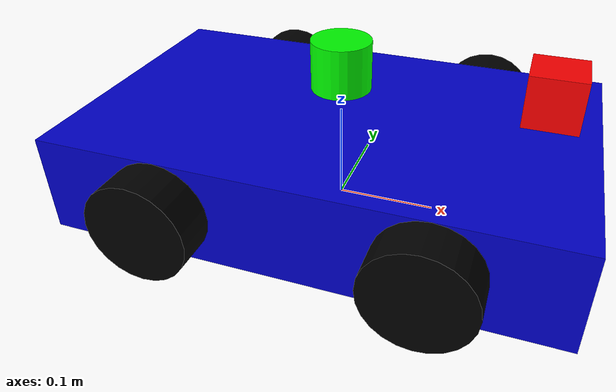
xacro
<?xml version="1.0"?>
<robot name="my_car_with_sensors" xmlns:xacro="http://www.ros.org/wiki/xacro">

  <!-- Include car model -->
  <xacro:include filename="$(find my_car_sim)/urdf/car.urdf.xacro" />

  <!-- Include sensors -->
  <xacro:include filename="$(find my_car_sim)/urdf/sensors.urdf.xacro" />

  <!-- Add camera -->
  <xacro:camera_sensor prefix="camera" parent="base_link" xyz="0.2 0 0.15" rpy="0 0 0" />

  <!-- Add LiDAR -->
  <xacro:lidar_sensor prefix="lidar" parent="base_link" xyz="0 0 0.15" rpy="0 0 0" />

</robot>

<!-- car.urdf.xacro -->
<robot name="my_car" xmlns:xacro="http://www.ros.org/wiki/xacro">

  <!-- Properties -->
  <xacro:property name="chassis_length" value="0.5"/>
  <xacro:property name="chassis_width" value="0.3"/>
  <xacro:property name="chassis_height" value="0.1"/>
  <xacro:property name="wheel_radius" value="0.05"/>
  <xacro:property name="wheel_width" value="0.04"/>
  <xacro:property name="wheel_mass" value="0.5"/>
  <xacro:property name="chassis_mass" value="5.0"/>

  <!-- Chassis -->
  <link name="base_link">
    <inertial>
      <mass value="${chassis_mass}"/>
      <origin xyz="0 0 ${chassis_height/2}" rpy="0 0 0"/>
      <inertia ixx="${chassis_mass/12 * (chassis_width*chassis_width + chassis_height*chassis_height)}"
               ixy="0" ixz="0"
               iyy="${chassis_mass/12 * (chassis_length*chassis_length + chassis_height*chassis_height)}"
               iyz="0"
               izz="${chassis_mass/12 * (chassis_length*chassis_length + chassis_width*chassis_width)}"/>
    </inertial>
    <collision>
      <origin xyz="0 0 ${chassis_height/2}" rpy="0 0 0"/>
      <geometry>
        <box size="${chassis_length} ${chassis_width} ${chassis_height}"/>
      </geometry>
    </collision>
    <visual>
      <origin xyz="0 0 ${chassis_height/2}" rpy="0 0 0"/>
      <geometry>
        <box size="${chassis_length} ${chassis_width} ${chassis_height}"/>
      </geometry>
      <material name="blue">
        <color rgba="0 0 0.8 1"/>
      </material>
    </visual>
  </link>

  <!-- Gazebo material -->
  <gazebo reference="base_link">
    <material>Gazebo/Blue</material>
  </gazebo>

  <!-- Wheel Macro -->
  <xacro:macro name="wheel" params="name x y z">
    <link name="${name}_wheel">
      <inertial>
        <mass value="${wheel_mass}"/>
        <origin xyz="0 0 0" rpy="${pi/2} 0 0"/>
        <inertia ixx="${wheel_mass * (3*wheel_radius*wheel_radius + wheel_width*wheel_width)/12}"
                 ixy="0" ixz="0"
                 iyy="${wheel_mass * (3*wheel_radius*wheel_radius + wheel_width*wheel_width)/12}"
                 iyz="0"
                 izz="${wheel_mass * wheel_radius*wheel_radius/2}"/>
      </inertial>
      <collision>
        <origin xyz="0 0 0" rpy="${pi/2} 0 0"/>
        <geometry>
          <cylinder radius="${wheel_radius}" length="${wheel_width}"/>
        </geometry>
      </collision>
      <visual>
        <origin xyz="0 0 0" rpy="${pi/2} 0 0"/>
        <geometry>
          <cylinder radius="${wheel_radius}" length="${wheel_width}"/>
        </geometry>
        <material name="black">
          <color rgba="0 0 0 1"/>
        </material>
      </visual>
    </link>

    <gazebo reference="${name}_wheel">
      <material>Gazebo/Black</material>
    </gazebo>

    <joint name="${name}_wheel_joint" type="continuous">
      <parent link="base_link"/>
      <child link="${name}_wheel"/>
      <origin xyz="${x} ${y} ${z}" rpy="0 0 0"/>
      <axis xyz="0 1 0"/>
      <dynamics damping="0.1" friction="0.1"/>
    </joint>
  </xacro:macro>

  <!-- Create wheels -->
  <xacro:wheel name="front_left" x="${chassis_length/4}" y="${chassis_width/2 + wheel_width/2}" z="${wheel_radius}"/>
  <xacro:wheel name="front_right" x="${chassis_length/4}" y="-${chassis_width/2 + wheel_width/2}" z="${wheel_radius}"/>
  <xacro:wheel name="rear_left" x="-${chassis_length/4}" y="${chassis_width/2 + wheel_width/2}" z="${wheel_radius}"/>
  <xacro:wheel name="rear_right" x="-${chassis_length/4}" y="-${chassis_width/2 + wheel_width/2}" z="${wheel_radius}"/>

  <!-- Add Gazebo plugin for SimulatedDifferentialDrive -->
  <gazebo>
    <plugin name="differential_drive_controller" filename="libgazebo_ros_diff_drive.so">
      <legacyMode>false</legacyMode>
      <alwaysOn>true</alwaysOn>
      <updateRate>20</updateRate>
      <leftJoint>front_left_wheel_joint</leftJoint>
      <rightJoint>front_right_wheel_joint</rightJoint>
      <wheelSeparation>${chassis_width + wheel_width}</wheelSeparation>
      <wheelDiameter>${2*wheel_radius}</wheelDiameter>
      <torque>50</torque>
      <commandTopic>cmd_vel</commandTopic>
      <odometryTopic>odom</odometryTopic>
      <odometryFrame>odom</odometryFrame>
      <robotBaseFrame>base_link</robotBaseFrame>
    </plugin>
  </gazebo>

</robot>

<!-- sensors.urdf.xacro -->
<robot xmlns:xacro="http://www.ros.org/wiki/xacro">

  <!-- Camera -->
  <xacro:macro name="camera_sensor" params="prefix parent xyz rpy">
    <joint name="${prefix}_joint" type="fixed">
      <parent link="${parent}"/>
      <child link="${prefix}_link"/>
      <origin xyz="${xyz}" rpy="${rpy}"/>
    </joint>

    <link name="${prefix}_link">
      <inertial>
        <mass value="0.1"/>
        <origin xyz="0 0 0" rpy="0 0 0"/>
        <inertia ixx="0.0001" ixy="0" ixz="0" iyy="0.0001" iyz="0" izz="0.0001"/>
      </inertial>
      <collision>
        <origin xyz="0 0 0" rpy="0 0 0"/>
        <geometry>
          <box size="0.05 0.05 0.05"/>
        </geometry>
      </collision>
      <visual>
        <origin xyz="0 0 0" rpy="0 0 0"/>
        <geometry>
          <box size="0.05 0.05 0.05"/>
        </geometry>
        <material name="red">
          <color rgba="1 0 0 1"/>
        </material>
      </visual>
    </link>

    <gazebo reference="${prefix}_link">
      <material>Gazebo/Red</material>
      <sensor type="camera" name="${prefix}">
        <update_rate>30.0</update_rate>
        <camera name="head">
          <horizontal_fov>1.3962634</horizontal_fov>
          <image>
            <width>800</width>
            <height>600</height>
            <format>R8G8B8</format>
          </image>
          <clip>
            <near>0.02</near>
            <far>300</far>
          </clip>
          <noise>
            <type>gaussian</type>
            <mean>0.0</mean>
            <stddev>0.007</stddev>
          </noise>
        </camera>
        <plugin name="camera_controller" filename="libgazebo_ros_camera.so">
          <alwaysOn>true</alwaysOn>
          <updateRate>0.0</updateRate>
          <cameraName>${prefix}</cameraName>
          <imageTopicName>image_raw</imageTopicName>
          <cameraInfoTopicName>camera_info</cameraInfoTopicName>
          <frameName>${prefix}_link</frameName>
          <hackBaseline>0.07</hackBaseline>
          <distortionK1>0.0</distortionK1>
          <distortionK2>0.0</distortionK2>
          <distortionK3>0.0</distortionK3>
          <distortionT1>0.0</distortionT1>
          <distortionT2>0.0</distortionT2>
        </plugin>
      </sensor>
    </gazebo>
  </xacro:macro>

  <!-- LiDAR -->
  <xacro:macro name="lidar_sensor" params="prefix parent xyz rpy">
    <joint name="${prefix}_joint" type="fixed">
      <parent link="${parent}"/>
      <child link="${prefix}_link"/>
      <origin xyz="${xyz}" rpy="${rpy}"/>
    </joint>

    <link name="${prefix}_link">
      <inertial>
        <mass value="0.1"/>
        <origin xyz="0 0 0" rpy="0 0 0"/>
        <inertia ixx="0.0001" ixy="0" ixz="0" iyy="0.0001" iyz="0" izz="0.0001"/>
      </inertial>
      <collision>
        <origin xyz="0 0 0" rpy="0 0 0"/>
        <geometry>
          <cylinder radius="0.03" length="0.05"/>
        </geometry>
      </collision>
      <visual>
        <origin xyz="0 0 0" rpy="0 0 0"/>
        <geometry>
          <cylinder radius="0.03" length="0.05"/>
        </geometry>
        <material name="green">
          <color rgba="0 1 0 1"/>
        </material>
      </visual>
    </link>

    <gazebo reference="${prefix}_link">
      <material>Gazebo/Green</material>
      <sensor type="ray" name="${prefix}">
        <pose>0 0 0 0 0 0</pose>
        <visualize>true</visualize>
        <update_rate>10</update_rate>
        <ray>
          <scan>
            <horizontal>
              <samples>360</samples>
              <resolution>1</resolution>
              <min_angle>-3.14159</min_angle>
              <max_angle>3.14159</max_angle>
            </horizontal>
          </scan>
          <range>
            <min>0.10</min>
            <max>30.0</max>
            <resolution>0.01</resolution>
          </range>
          <noise>
            <type>gaussian</type>
            <mean>0.0</mean>
            <stddev>0.01</stddev>
          </noise>
        </ray>
        <plugin name="gazebo_ros_${prefix}_controller" filename="libgazebo_ros_laser.so">
          <topicName>${prefix}/scan</topicName>
          <frameName>${prefix}_link</frameName>
        </plugin>
      </sensor>
    </gazebo>
  </xacro:macro>

</robot>
